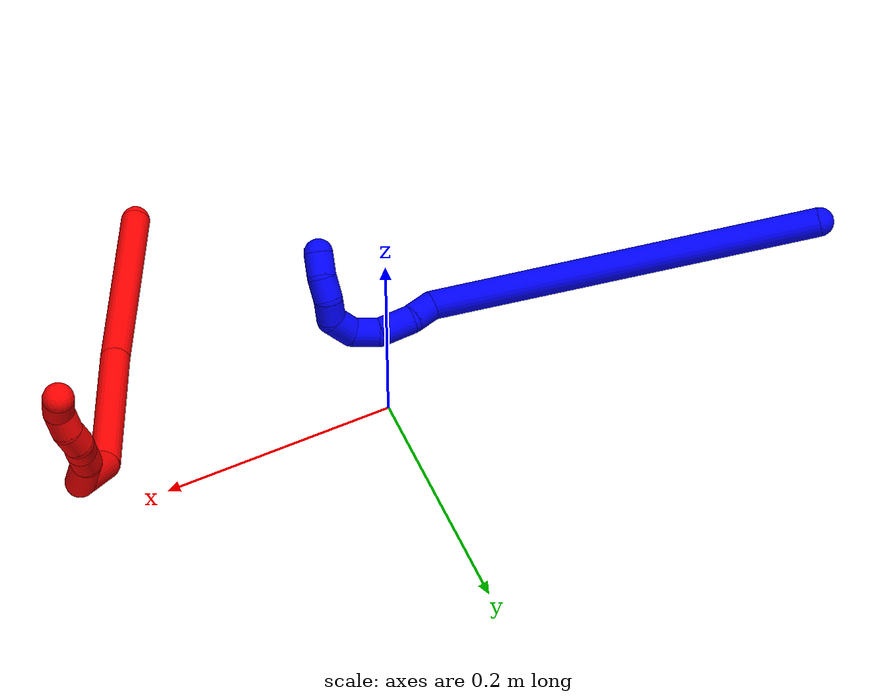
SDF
<sdf version="1.7">
 <world name="default">
  <plugin name="TubeGeneratorPlugin" filename="libtube_generator_plugin.so"/>
  <model name="photoneo_s_sensor">
   <static>1</static>
   <pose>0 0 2 1.57079 1.57079 3.14159</pose>
   <link name="link">
    <inertial><mass>0.1</mass></inertial>
    <sensor name="sensor" type="depth">
     <update_rate>30</update_rate>
     <camera>
      <horizontal_fov>1.22</horizontal_fov>
      <image><width>1920</width><height>1200</height><format>B8G8R8</format></image>
      <clip><near>0.1</near><far>4</far></clip>
      <depth_camera><output>points</output></depth_camera>
     </camera>
     <plugin name="camera_plugin" filename="libgazebo_ros_depth_camera.so">
      <baseline>0.2</baseline>
      <alwaysOn>1</alwaysOn>
      <updateRate>0.0</updateRate>
      <cameraName>camera_ir</cameraName>
      <imageTopicName>/camera/color/image_raw</imageTopicName>
      <cameraInfoTopicName>/camera/color/camera_info</cameraInfoTopicName>
      <depthImageTopicName>/camera/depth/image_raw</depthImageTopicName>
      <depthImageCameraInfoTopicName>/camera/depth/camera_info</depthImageCameraInfoTopicName>
      <pointCloudTopicName>/camera/depth/points</pointCloudTopicName>
      <frameName>fr_optical</frameName>
      <pointCloudCutoff>0.1</pointCloudCutoff>
      <pointCloudCutoffMax>2.0</pointCloudCutoffMax>
      <distortionK1>0</distortionK1>
      <distortionK2>0</distortionK2>
      <distortionK3>0</distortionK3>
      <distortionT1>0</distortionT1>
      <distortionT2>0</distortionT2>
      <CxPrime>0</CxPrime>
      <Cx>0</Cx>
      <Cy>0</Cy>
      <focalLength>0</focalLength>
      <hackBaseline>0</hackBaseline>
     </plugin>
    </sensor>
   </link>
  </model>
  <gravity>0 0 -9.8</gravity>
  <magnetic_field>6e-06 2.3e-05 -4.2e-05</magnetic_field>
  <atmosphere type="adiabatic"/>
  <physics name="default_physics" default="0" type="ode">
   <max_step_size>0.003</max_step_size>
   <real_time_factor>1</real_time_factor>
   <real_time_update_rate>1000</real_time_update_rate>
   <max_contacts>10000</max_contacts>
   <ode>
    <solver>
     <type>quick</type>
     <iters>100</iters>
     <sor>1.3</sor>
     <use_dynamic_moi_rescaling>0</use_dynamic_moi_rescaling>
    </solver>
    <constraints>
     <contact_max_correcting_vel>0</contact_max_correcting_vel>
     <contact_surface_layer>0.001</contact_surface_layer>
     <cfm>0</cfm>
     <erp>0.2</erp>
    </constraints>
   </ode>
  </physics>
  <scene><ambient>0.4 0.4 0.4 1</ambient><background>0.7 0.7 0.7 1</background><shadows>0</shadows></scene>
  <audio><device>default</device></audio>
  <spherical_coordinates>
   <surface_model>EARTH_WGS84</surface_model>
   <latitude_deg>0</latitude_deg>
   <longitude_deg>0</longitude_deg>
   <elevation>0</elevation>
   <heading_deg>0</heading_deg>
  </spherical_coordinates>
  <model name="bin">
   <static>1</static>
   <link name="bottom">
    <collision name="collision-bottom">
     <pose>0 0 -0.01 0 -0 0</pose>
     <geometry><box><size>0.8 0.6 0.02</size></box></geometry>
     <surface>
      <friction><ode><mu>100</mu><mu2>100</mu2></ode></friction>
      <contact><collide_bitmask>65535</collide_bitmask></contact>
     </surface>
    </collision>
   </link>
   <link name="west_wall">
    <collision name="collision-west_wall">
     <pose>-0.41 0 0.1 0 -0 0</pose>
     <geometry><box><size>0.02 0.6 0.2</size></box></geometry>
     <surface>
      <friction><ode><mu>100</mu><mu2>100</mu2></ode></friction>
      <contact><collide_bitmask>65535</collide_bitmask></contact>
     </surface>
    </collision>
   </link>
   <link name="east_wall">
    <collision name="collision-east_wall">
     <pose>0.41 0 0.1 0 -0 0</pose>
     <geometry><box><size>0.02 0.6 0.2</size></box></geometry>
     <surface>
      <friction><ode><mu>100</mu><mu2>100</mu2></ode></friction>
      <contact><collide_bitmask>65535</collide_bitmask></contact>
     </surface>
    </collision>
   </link>
   <link name="south_wall">
    <collision name="collision-south_wall">
     <pose>0 -0.31 0.1 0 -0 0</pose>
     <geometry><box><size>0.8 0.02 0.2</size></box></geometry>
     <surface>
      <friction><ode><mu>100</mu><mu2>100</mu2></ode></friction>
      <contact><collide_bitmask>65535</collide_bitmask></contact>
     </surface>
    </collision>
   </link>
   <link name="north_wall">
    <collision name="collision-north_wall">
     <pose>0 0.31 0.1 0 -0 0</pose>
     <geometry><box><size>0.8 0.02 0.2</size></box></geometry>
     <surface>
      <friction><ode><mu>100</mu><mu2>100</mu2></ode></friction>
      <contact><collide_bitmask>65535</collide_bitmask></contact>
     </surface>
    </collision>
   </link>
  </model>
  <model name="1">
   <static>0</static>
   <link name="1">
    <collision name="collision-cylinder-e_1_1_4">
     <pose>0.10934 -0.042241 -0.1211 2.80598 0.705955 2.27962</pose>
     <geometry><cylinder><radius>0.0125</radius><length>0.337075</length></cylinder></geometry>
     <surface>
      <friction><ode><mu>1.16</mu><mu2>1.16</mu2><slip1>0</slip1><slip2>0</slip2></ode></friction>
      <contact><ode><kp>1e+06</kp><kd>1</kd><max_vel>0</max_vel><min_depth>0.001</min_depth></ode></contact>
     </surface>
    </collision>
    <visual name="visual-cylinder-e_1_1_4">
     <pose>0.10934 -0.042241 -0.1211 2.80598 0.705955 2.27962</pose>
     <geometry><cylinder><radius>0.0125</radius><length>0.337075</length></cylinder></geometry>
     <material><ambient>0 0 1 1</ambient></material>
    </visual>
    <collision name="collision-cylinder-e_2_4_5">
     <pose>0.229026 -0.079923 -0.247228 -2.40511 0.990154 -1.90066</pose>
     <geometry><cylinder><radius>0.0125</radius><length>0.024746</length></cylinder></geometry>
     <surface>
      <friction><ode><mu>1.16</mu><mu2>1.16</mu2><slip1>0</slip1><slip2>0</slip2></ode></friction>
      <contact><ode><kp>1e+06</kp><kd>1</kd><max_vel>0</max_vel><min_depth>0.001</min_depth></ode></contact>
     </surface>
    </collision>
    <visual name="visual-cylinder-e_2_4_5">
     <pose>0.229026 -0.079923 -0.247228 -2.40511 0.990154 -1.90066</pose>
     <geometry><cylinder><radius>0.0125</radius><length>0.024746</length></cylinder></geometry>
     <material><ambient>0 0 1 1</ambient></material>
    </visual>
    <collision name="collision-cylinder-e_3_5_6">
     <pose>0.251151 -0.074454 -0.261286 -3.04116 0.914376 -2.93798</pose>
     <geometry><cylinder><radius>0.0125</radius><length>0.029741</length></cylinder></geometry>
     <surface>
      <friction><ode><mu>1.16</mu><mu2>1.16</mu2><slip1>0</slip1><slip2>0</slip2></ode></friction>
      <contact><ode><kp>1e+06</kp><kd>1</kd><max_vel>0</max_vel><min_depth>0.001</min_depth></ode></contact>
     </surface>
    </collision>
    <visual name="visual-cylinder-e_3_5_6">
     <pose>0.251151 -0.074454 -0.261286 -3.04116 0.914376 -2.93798</pose>
     <geometry><cylinder><radius>0.0125</radius><length>0.029741</length></cylinder></geometry>
     <material><ambient>0 0 1 1</ambient></material>
    </visual>
    <collision name="collision-cylinder-e_4_6_7">
     <pose>0.272161 -0.077791 -0.276342 2.52773 0.896771 1.97646</pose>
     <geometry><cylinder><radius>0.0125</radius><length>0.023626</length></cylinder></geometry>
     <surface>
      <friction><ode><mu>1.16</mu><mu2>1.16</mu2><slip1>0</slip1><slip2>0</slip2></ode></friction>
      <contact><ode><kp>1e+06</kp><kd>1</kd><max_vel>0</max_vel><min_depth>0.001</min_depth></ode></contact>
     </surface>
    </collision>
    <visual name="visual-cylinder-e_4_6_7">
     <pose>0.272161 -0.077791 -0.276342 2.52773 0.896771 1.97646</pose>
     <geometry><cylinder><radius>0.0125</radius><length>0.023626</length></cylinder></geometry>
     <material><ambient>0 0 1 1</ambient></material>
    </visual>
    <collision name="collision-cylinder-e_5_7_8">
     <pose>0.292802 -0.085915 -0.279763 0.978968 1.18219 0.686743</pose>
     <geometry><cylinder><radius>0.0125</radius><length>0.02466</length></cylinder></geometry>
     <surface>
      <friction><ode><mu>1.16</mu><mu2>1.16</mu2><slip1>0</slip1><slip2>0</slip2></ode></friction>
      <contact><ode><kp>1e+06</kp><kd>1</kd><max_vel>0</max_vel><min_depth>0.001</min_depth></ode></contact>
     </surface>
    </collision>
    <visual name="visual-cylinder-e_5_7_8">
     <pose>0.292802 -0.085915 -0.279763 0.978968 1.18219 0.686743</pose>
     <geometry><cylinder><radius>0.0125</radius><length>0.02466</length></cylinder></geometry>
     <material><ambient>0 0 1 1</ambient></material>
    </visual>
    <collision name="collision-cylinder-e_6_8_9">
     <pose>0.309029 -0.094369 -0.269672 0.548838 0.502097 0.144147</pose>
     <geometry><cylinder><radius>0.0125</radius><length>0.020015</length></cylinder></geometry>
     <surface>
      <friction><ode><mu>1.16</mu><mu2>1.16</mu2><slip1>0</slip1><slip2>0</slip2></ode></friction>
      <contact><ode><kp>1e+06</kp><kd>1</kd><max_vel>0</max_vel><min_depth>0.001</min_depth></ode></contact>
     </surface>
    </collision>
    <visual name="visual-cylinder-e_6_8_9">
     <pose>0.309029 -0.094369 -0.269672 0.548838 0.502097 0.144147</pose>
     <geometry><cylinder><radius>0.0125</radius><length>0.020015</length></cylinder></geometry>
     <material><ambient>0 0 1 1</ambient></material>
    </visual>
    <collision name="collision-cylinder-e_7_9_10">
     <pose>0.317686 -0.106425 -0.256708 0.938439 0.392763 0.201045</pose>
     <geometry><cylinder><radius>0.0125</radius><length>0.020073</length></cylinder></geometry>
     <surface>
      <friction><ode><mu>1.16</mu><mu2>1.16</mu2><slip1>0</slip1><slip2>0</slip2></ode></friction>
      <contact><ode><kp>1e+06</kp><kd>1</kd><max_vel>0</max_vel><min_depth>0.001</min_depth></ode></contact>
     </surface>
    </collision>
    <visual name="visual-cylinder-e_7_9_10">
     <pose>0.317686 -0.106425 -0.256708 0.938439 0.392763 0.201045</pose>
     <geometry><cylinder><radius>0.0125</radius><length>0.020073</length></cylinder></geometry>
     <material><ambient>0 0 1 1</ambient></material>
    </visual>
    <collision name="collision-cylinder-e_8_10_2">
     <pose>0.322503 -0.122693 -0.24649 1.07635 0.097364 0.058151</pose>
     <geometry><cylinder><radius>0.0125</radius><length>0.020064</length></cylinder></geometry>
     <surface>
      <friction><ode><mu>1.16</mu><mu2>1.16</mu2><slip1>0</slip1><slip2>0</slip2></ode></friction>
      <contact><ode><kp>1e+06</kp><kd>1</kd><max_vel>0</max_vel><min_depth>0.001</min_depth></ode></contact>
     </surface>
    </collision>
    <visual name="visual-cylinder-e_8_10_2">
     <pose>0.322503 -0.122693 -0.24649 1.07635 0.097364 0.058151</pose>
     <geometry><cylinder><radius>0.0125</radius><length>0.020064</length></cylinder></geometry>
     <material><ambient>0 0 1 1</ambient></material>
    </visual>
    <collision name="collision-sphere-2">
     <pose>0.323478 -0.131482 -0.241751 0 -0 0</pose>
     <geometry><sphere><radius>0.0125</radius></sphere></geometry>
     <surface>
      <friction><ode><mu>1.16</mu><mu2>1.16</mu2><slip1>0</slip1><slip2>0</slip2></ode></friction>
      <contact><ode><kp>1e+06</kp><kd>1</kd><max_vel>0</max_vel><min_depth>0.001</min_depth></ode></contact>
     </surface>
    </collision>
    <visual name="visual-sphere-2">
     <pose>0.323478 -0.131482 -0.241751 0 -0 0</pose>
     <geometry><sphere><radius>0.0125</radius></sphere></geometry>
     <material><ambient>0 0 1 1</ambient></material>
    </visual>
    <collision name="collision-sphere-10">
     <pose>0.321528 -0.113905 -0.251228 0 -0 0</pose>
     <geometry><sphere><radius>0.0125</radius></sphere></geometry>
     <surface>
      <friction><ode><mu>1.16</mu><mu2>1.16</mu2><slip1>0</slip1><slip2>0</slip2></ode></friction>
      <contact><ode><kp>1e+06</kp><kd>1</kd><max_vel>0</max_vel><min_depth>0.001</min_depth></ode></contact>
     </surface>
    </collision>
    <visual name="visual-sphere-10">
     <pose>0.321528 -0.113905 -0.251228 0 -0 0</pose>
     <geometry><sphere><radius>0.0125</radius></sphere></geometry>
     <material><ambient>0 0 1 1</ambient></material>
    </visual>
    <collision name="collision-sphere-9">
     <pose>0.313845 -0.098946 -0.262188 0 -0 0</pose>
     <geometry><sphere><radius>0.0125</radius></sphere></geometry>
     <surface>
      <friction><ode><mu>1.16</mu><mu2>1.16</mu2><slip1>0</slip1><slip2>0</slip2></ode></friction>
      <contact><ode><kp>1e+06</kp><kd>1</kd><max_vel>0</max_vel><min_depth>0.001</min_depth></ode></contact>
     </surface>
    </collision>
    <visual name="visual-sphere-9">
     <pose>0.313845 -0.098946 -0.262188 0 -0 0</pose>
     <geometry><sphere><radius>0.0125</radius></sphere></geometry>
     <material><ambient>0 0 1 1</ambient></material>
    </visual>
    <collision name="collision-sphere-4">
     <pose>0.218681 -0.084482 -0.2422 0 -0 0</pose>
     <geometry><sphere><radius>0.0125</radius></sphere></geometry>
     <surface>
      <friction><ode><mu>1.16</mu><mu2>1.16</mu2><slip1>0</slip1><slip2>0</slip2></ode></friction>
      <contact><ode><kp>1e+06</kp><kd>1</kd><max_vel>0</max_vel><min_depth>0.001</min_depth></ode></contact>
     </surface>
    </collision>
    <visual name="visual-sphere-4">
     <pose>0.218681 -0.084482 -0.2422 0 -0 0</pose>
     <geometry><sphere><radius>0.0125</radius></sphere></geometry>
     <material><ambient>0 0 1 1</ambient></material>
    </visual>
    <collision name="collision-sphere-1">
     <geometry><sphere><radius>0.0125</radius></sphere></geometry>
     <surface>
      <friction><ode><mu>1.16</mu><mu2>1.16</mu2><slip1>0</slip1><slip2>0</slip2></ode></friction>
      <contact><ode><kp>1e+06</kp><kd>1</kd><max_vel>0</max_vel><min_depth>0.001</min_depth></ode></contact>
     </surface>
    </collision>
    <visual name="visual-sphere-1">
     <geometry><sphere><radius>0.0125</radius></sphere></geometry>
     <material><ambient>0 0 1 1</ambient></material>
    </visual>
    <collision name="collision-sphere-8">
     <pose>0.304212 -0.089793 -0.277157 0 -0 0</pose>
     <geometry><sphere><radius>0.0125</radius></sphere></geometry>
     <surface>
      <friction><ode><mu>1.16</mu><mu2>1.16</mu2><slip1>0</slip1><slip2>0</slip2></ode></friction>
      <contact><ode><kp>1e+06</kp><kd>1</kd><max_vel>0</max_vel><min_depth>0.001</min_depth></ode></contact>
     </surface>
    </collision>
    <visual name="visual-sphere-8">
     <pose>0.304212 -0.089793 -0.277157 0 -0 0</pose>
     <geometry><sphere><radius>0.0125</radius></sphere></geometry>
     <material><ambient>0 0 1 1</ambient></material>
    </visual>
    <collision name="collision-sphere-5">
     <pose>0.239371 -0.075364 -0.252257 0 -0 0</pose>
     <geometry><sphere><radius>0.0125</radius></sphere></geometry>
     <surface>
      <friction><ode><mu>1.16</mu><mu2>1.16</mu2><slip1>0</slip1><slip2>0</slip2></ode></friction>
      <contact><ode><kp>1e+06</kp><kd>1</kd><max_vel>0</max_vel><min_depth>0.001</min_depth></ode></contact>
     </surface>
    </collision>
    <visual name="visual-sphere-5">
     <pose>0.239371 -0.075364 -0.252257 0 -0 0</pose>
     <geometry><sphere><radius>0.0125</radius></sphere></geometry>
     <material><ambient>0 0 1 1</ambient></material>
    </visual>
    <collision name="collision-sphere-6">
     <pose>0.262931 -0.073544 -0.270315 0 -0 0</pose>
     <geometry><sphere><radius>0.0125</radius></sphere></geometry>
     <surface>
      <friction><ode><mu>1.16</mu><mu2>1.16</mu2><slip1>0</slip1><slip2>0</slip2></ode></friction>
      <contact><ode><kp>1e+06</kp><kd>1</kd><max_vel>0</max_vel><min_depth>0.001</min_depth></ode></contact>
     </surface>
    </collision>
    <visual name="visual-sphere-6">
     <pose>0.262931 -0.073544 -0.270315 0 -0 0</pose>
     <geometry><sphere><radius>0.0125</radius></sphere></geometry>
     <material><ambient>0 0 1 1</ambient></material>
    </visual>
    <collision name="collision-sphere-7">
     <pose>0.281391 -0.082038 -0.282369 0 -0 0</pose>
     <geometry><sphere><radius>0.0125</radius></sphere></geometry>
     <surface>
      <friction><ode><mu>1.16</mu><mu2>1.16</mu2><slip1>0</slip1><slip2>0</slip2></ode></friction>
      <contact><ode><kp>1e+06</kp><kd>1</kd><max_vel>0</max_vel><min_depth>0.001</min_depth></ode></contact>
     </surface>
    </collision>
    <visual name="visual-sphere-7">
     <pose>0.281391 -0.082038 -0.282369 0 -0 0</pose>
     <geometry><sphere><radius>0.0125</radius></sphere></geometry>
     <material><ambient>0 0 1 1</ambient></material>
    </visual>
    <inertial>
     <pose>0.165353 -0.057748 -0.167265 0 -0 0</pose>
     <mass>0.5</mass>
     <inertia>
      <ixx>0.000292</ixx>
      <ixy>0</ixy>
      <ixz>0</ixz>
      <iyy>0.004343</iyy>
      <iyz>0</iyz>
      <izz>-0.001301</izz>
     </inertia>
    </inertial>
   </link>
   <pose>-0.388457 0.02711 0.078851 -0.055027 -0.617234 -0.009864</pose>
  </model>
  <model name="2">
   <static>0</static>
   <link name="2">
    <collision name="collision-cylinder-e_1_1_4">
     <pose>0.037341 0.004249 0.073807 -0.057505 0.467708 -0.013702</pose>
     <geometry><cylinder><radius>0.0125</radius><length>0.165649</length></cylinder></geometry>
     <surface>
      <friction><ode><mu>1.16</mu><mu2>1.16</mu2><slip1>0</slip1><slip2>0</slip2></ode></friction>
      <contact><ode><kp>1e+06</kp><kd>1</kd><max_vel>0</max_vel><min_depth>0.001</min_depth></ode></contact>
     </surface>
    </collision>
    <visual name="visual-cylinder-e_1_1_4">
     <pose>0.037341 0.004249 0.073807 -0.057505 0.467708 -0.013702</pose>
     <geometry><cylinder><radius>0.0125</radius><length>0.165649</length></cylinder></geometry>
     <material><ambient>1 0 0 1</ambient></material>
    </visual>
    <collision name="collision-cylinder-e_2_4_5">
     <pose>0.101103 0.015386 0.203511 -0.122618 0.438652 -0.027366</pose>
     <geometry><cylinder><radius>0.0125</radius><length>0.124417</length></cylinder></geometry>
     <surface>
      <friction><ode><mu>1.16</mu><mu2>1.16</mu2><slip1>0</slip1><slip2>0</slip2></ode></friction>
      <contact><ode><kp>1e+06</kp><kd>1</kd><max_vel>0</max_vel><min_depth>0.001</min_depth></ode></contact>
     </surface>
    </collision>
    <visual name="visual-cylinder-e_2_4_5">
     <pose>0.101103 0.015386 0.203511 -0.122618 0.438652 -0.027366</pose>
     <geometry><cylinder><radius>0.0125</radius><length>0.124417</length></cylinder></geometry>
     <material><ambient>1 0 0 1</ambient></material>
    </visual>
    <collision name="collision-cylinder-e_3_5_6">
     <pose>0.124714 0.021513 0.283903 0.0311 -0.114155 -0.001777</pose>
     <geometry><cylinder><radius>0.0125</radius><length>0.049336</length></cylinder></geometry>
     <surface>
      <friction><ode><mu>1.16</mu><mu2>1.16</mu2><slip1>0</slip1><slip2>0</slip2></ode></friction>
      <contact><ode><kp>1e+06</kp><kd>1</kd><max_vel>0</max_vel><min_depth>0.001</min_depth></ode></contact>
     </surface>
    </collision>
    <visual name="visual-cylinder-e_3_5_6">
     <pose>0.124714 0.021513 0.283903 0.0311 -0.114155 -0.001777</pose>
     <geometry><cylinder><radius>0.0125</radius><length>0.049336</length></cylinder></geometry>
     <material><ambient>1 0 0 1</ambient></material>
    </visual>
    <collision name="collision-cylinder-e_4_6_7">
     <pose>0.107761 0.036591 0.328474 -0.66803 -0.505188 0.178658</pose>
     <geometry><cylinder><radius>0.0125</radius><length>0.058445</length></cylinder></geometry>
     <surface>
      <friction><ode><mu>1.16</mu><mu2>1.16</mu2><slip1>0</slip1><slip2>0</slip2></ode></friction>
      <contact><ode><kp>1e+06</kp><kd>1</kd><max_vel>0</max_vel><min_depth>0.001</min_depth></ode></contact>
     </surface>
    </collision>
    <visual name="visual-cylinder-e_4_6_7">
     <pose>0.107761 0.036591 0.328474 -0.66803 -0.505188 0.178658</pose>
     <geometry><cylinder><radius>0.0125</radius><length>0.058445</length></cylinder></geometry>
     <material><ambient>1 0 0 1</ambient></material>
    </visual>
    <collision name="collision-cylinder-e_5_7_8">
     <pose>0.086378 0.055304 0.355326 -0.400879 -0.777196 0.165979</pose>
     <geometry><cylinder><radius>0.0125</radius><length>0.020649</length></cylinder></geometry>
     <surface>
      <friction><ode><mu>1.16</mu><mu2>1.16</mu2><slip1>0</slip1><slip2>0</slip2></ode></friction>
      <contact><ode><kp>1e+06</kp><kd>1</kd><max_vel>0</max_vel><min_depth>0.001</min_depth></ode></contact>
     </surface>
    </collision>
    <visual name="visual-cylinder-e_5_7_8">
     <pose>0.086378 0.055304 0.355326 -0.400879 -0.777196 0.165979</pose>
     <geometry><cylinder><radius>0.0125</radius><length>0.020649</length></cylinder></geometry>
     <material><ambient>1 0 0 1</ambient></material>
    </visual>
    <collision name="collision-cylinder-e_6_8_9">
     <pose>0.073317 0.061999 0.369858 -0.457988 -0.592457 0.142038</pose>
     <geometry><cylinder><radius>0.0125</radius><length>0.020848</length></cylinder></geometry>
     <surface>
      <friction><ode><mu>1.16</mu><mu2>1.16</mu2><slip1>0</slip1><slip2>0</slip2></ode></friction>
      <contact><ode><kp>1e+06</kp><kd>1</kd><max_vel>0</max_vel><min_depth>0.001</min_depth></ode></contact>
     </surface>
    </collision>
    <visual name="visual-cylinder-e_6_8_9">
     <pose>0.073317 0.061999 0.369858 -0.457988 -0.592457 0.142038</pose>
     <geometry><cylinder><radius>0.0125</radius><length>0.020848</length></cylinder></geometry>
     <material><ambient>1 0 0 1</ambient></material>
    </visual>
    <collision name="collision-cylinder-e_7_9_10">
     <pose>0.0596 0.066497 0.383784 -0.108835 -0.904624 0.052924</pose>
     <geometry><cylinder><radius>0.0125</radius><length>0.020086</length></cylinder></geometry>
     <surface>
      <friction><ode><mu>1.16</mu><mu2>1.16</mu2><slip1>0</slip1><slip2>0</slip2></ode></friction>
      <contact><ode><kp>1e+06</kp><kd>1</kd><max_vel>0</max_vel><min_depth>0.001</min_depth></ode></contact>
     </surface>
    </collision>
    <visual name="visual-cylinder-e_7_9_10">
     <pose>0.0596 0.066497 0.383784 -0.108835 -0.904624 0.052924</pose>
     <geometry><cylinder><radius>0.0125</radius><length>0.020086</length></cylinder></geometry>
     <material><ambient>1 0 0 1</ambient></material>
    </visual>
    <collision name="collision-cylinder-e_8_10_11">
     <pose>0.042385 0.068432 0.39378 -0.318429 -1.16277 0.210264</pose>
     <geometry><cylinder><radius>0.0125</radius><length>0.020305</length></cylinder></geometry>
     <surface>
      <friction><ode><mu>1.16</mu><mu2>1.16</mu2><slip1>0</slip1><slip2>0</slip2></ode></friction>
      <contact><ode><kp>1e+06</kp><kd>1</kd><max_vel>0</max_vel><min_depth>0.001</min_depth></ode></contact>
     </surface>
    </collision>
    <visual name="visual-cylinder-e_8_10_11">
     <pose>0.042385 0.068432 0.39378 -0.318429 -1.16277 0.210264</pose>
     <geometry><cylinder><radius>0.0125</radius><length>0.020305</length></cylinder></geometry>
     <material><ambient>1 0 0 1</ambient></material>
    </visual>
    <collision name="collision-cylinder-e_9_11_2">
     <pose>0.026219 0.074423 0.403386 -0.685818 -0.74205 0.276021</pose>
     <geometry><cylinder><radius>0.0125</radius><length>0.020264</length></cylinder></geometry>
     <surface>
      <friction><ode><mu>1.16</mu><mu2>1.16</mu2><slip1>0</slip1><slip2>0</slip2></ode></friction>
      <contact><ode><kp>1e+06</kp><kd>1</kd><max_vel>0</max_vel><min_depth>0.001</min_depth></ode></contact>
     </surface>
    </collision>
    <visual name="visual-cylinder-e_9_11_2">
     <pose>0.026219 0.074423 0.403386 -0.685818 -0.74205 0.276021</pose>
     <geometry><cylinder><radius>0.0125</radius><length>0.020264</length></cylinder></geometry>
     <material><ambient>1 0 0 1</ambient></material>
    </visual>
    <collision name="collision-sphere-2">
     <pose>0.019372 0.079153 0.409165 0 -0 0</pose>
     <geometry><sphere><radius>0.0125</radius></sphere></geometry>
     <surface>
      <friction><ode><mu>1.16</mu><mu2>1.16</mu2><slip1>0</slip1><slip2>0</slip2></ode></friction>
      <contact><ode><kp>1e+06</kp><kd>1</kd><max_vel>0</max_vel><min_depth>0.001</min_depth></ode></contact>
     </surface>
    </collision>
    <visual name="visual-sphere-2">
     <pose>0.019372 0.079153 0.409165 0 -0 0</pose>
     <geometry><sphere><radius>0.0125</radius></sphere></geometry>
     <material><ambient>1 0 0 1</ambient></material>
    </visual>
    <collision name="collision-sphere-11">
     <pose>0.033066 0.069693 0.397606 0 -0 0</pose>
     <geometry><sphere><radius>0.0125</radius></sphere></geometry>
     <surface>
      <friction><ode><mu>1.16</mu><mu2>1.16</mu2><slip1>0</slip1><slip2>0</slip2></ode></friction>
      <contact><ode><kp>1e+06</kp><kd>1</kd><max_vel>0</max_vel><min_depth>0.001</min_depth></ode></contact>
     </surface>
    </collision>
    <visual name="visual-sphere-11">
     <pose>0.033066 0.069693 0.397606 0 -0 0</pose>
     <geometry><sphere><radius>0.0125</radius></sphere></geometry>
     <material><ambient>1 0 0 1</ambient></material>
    </visual>
    <collision name="collision-sphere-10">
     <pose>0.051705 0.067171 0.389954 0 -0 0</pose>
     <geometry><sphere><radius>0.0125</radius></sphere></geometry>
     <surface>
      <friction><ode><mu>1.16</mu><mu2>1.16</mu2><slip1>0</slip1><slip2>0</slip2></ode></friction>
      <contact><ode><kp>1e+06</kp><kd>1</kd><max_vel>0</max_vel><min_depth>0.001</min_depth></ode></contact>
     </surface>
    </collision>
    <visual name="visual-sphere-10">
     <pose>0.051705 0.067171 0.389954 0 -0 0</pose>
     <geometry><sphere><radius>0.0125</radius></sphere></geometry>
     <material><ambient>1 0 0 1</ambient></material>
    </visual>
    <collision name="collision-sphere-9">
     <pose>0.067496 0.065823 0.377615 0 -0 0</pose>
     <geometry><sphere><radius>0.0125</radius></sphere></geometry>
     <surface>
      <friction><ode><mu>1.16</mu><mu2>1.16</mu2><slip1>0</slip1><slip2>0</slip2></ode></friction>
      <contact><ode><kp>1e+06</kp><kd>1</kd><max_vel>0</max_vel><min_depth>0.001</min_depth></ode></contact>
     </surface>
    </collision>
    <visual name="visual-sphere-9">
     <pose>0.067496 0.065823 0.377615 0 -0 0</pose>
     <geometry><sphere><radius>0.0125</radius></sphere></geometry>
     <material><ambient>1 0 0 1</ambient></material>
    </visual>
    <collision name="collision-sphere-4">
     <pose>0.074682 0.008498 0.147615 0 -0 0</pose>
     <geometry><sphere><radius>0.0125</radius></sphere></geometry>
     <surface>
      <friction><ode><mu>1.16</mu><mu2>1.16</mu2><slip1>0</slip1><slip2>0</slip2></ode></friction>
      <contact><ode><kp>1e+06</kp><kd>1</kd><max_vel>0</max_vel><min_depth>0.001</min_depth></ode></contact>
     </surface>
    </collision>
    <visual name="visual-sphere-4">
     <pose>0.074682 0.008498 0.147615 0 -0 0</pose>
     <geometry><sphere><radius>0.0125</radius></sphere></geometry>
     <material><ambient>1 0 0 1</ambient></material>
    </visual>
    <collision name="collision-sphere-1">
     <geometry><sphere><radius>0.0125</radius></sphere></geometry>
     <surface>
      <friction><ode><mu>1.16</mu><mu2>1.16</mu2><slip1>0</slip1><slip2>0</slip2></ode></friction>
      <contact><ode><kp>1e+06</kp><kd>1</kd><max_vel>0</max_vel><min_depth>0.001</min_depth></ode></contact>
     </surface>
    </collision>
    <visual name="visual-sphere-1">
     <geometry><sphere><radius>0.0125</radius></sphere></geometry>
     <material><ambient>1 0 0 1</ambient></material>
    </visual>
    <collision name="collision-sphere-8">
     <pose>0.079138 0.058176 0.362102 0 -0 0</pose>
     <geometry><sphere><radius>0.0125</radius></sphere></geometry>
     <surface>
      <friction><ode><mu>1.16</mu><mu2>1.16</mu2><slip1>0</slip1><slip2>0</slip2></ode></friction>
      <contact><ode><kp>1e+06</kp><kd>1</kd><max_vel>0</max_vel><min_depth>0.001</min_depth></ode></contact>
     </surface>
    </collision>
    <visual name="visual-sphere-8">
     <pose>0.079138 0.058176 0.362102 0 -0 0</pose>
     <geometry><sphere><radius>0.0125</radius></sphere></geometry>
     <material><ambient>1 0 0 1</ambient></material>
    </visual>
    <collision name="collision-sphere-5">
     <pose>0.127524 0.022275 0.259407 0 -0 0</pose>
     <geometry><sphere><radius>0.0125</radius></sphere></geometry>
     <surface>
      <friction><ode><mu>1.16</mu><mu2>1.16</mu2><slip1>0</slip1><slip2>0</slip2></ode></friction>
      <contact><ode><kp>1e+06</kp><kd>1</kd><max_vel>0</max_vel><min_depth>0.001</min_depth></ode></contact>
     </surface>
    </collision>
    <visual name="visual-sphere-5">
     <pose>0.127524 0.022275 0.259407 0 -0 0</pose>
     <geometry><sphere><radius>0.0125</radius></sphere></geometry>
     <material><ambient>1 0 0 1</ambient></material>
    </visual>
    <collision name="collision-sphere-6">
     <pose>0.121904 0.020751 0.308399 0 -0 0</pose>
     <geometry><sphere><radius>0.0125</radius></sphere></geometry>
     <surface>
      <friction><ode><mu>1.16</mu><mu2>1.16</mu2><slip1>0</slip1><slip2>0</slip2></ode></friction>
      <contact><ode><kp>1e+06</kp><kd>1</kd><max_vel>0</max_vel><min_depth>0.001</min_depth></ode></contact>
     </surface>
    </collision>
    <visual name="visual-sphere-6">
     <pose>0.121904 0.020751 0.308399 0 -0 0</pose>
     <geometry><sphere><radius>0.0125</radius></sphere></geometry>
     <material><ambient>1 0 0 1</ambient></material>
    </visual>
    <collision name="collision-sphere-7">
     <pose>0.093619 0.052432 0.348549 0 -0 0</pose>
     <geometry><sphere><radius>0.0125</radius></sphere></geometry>
     <surface>
      <friction><ode><mu>1.16</mu><mu2>1.16</mu2><slip1>0</slip1><slip2>0</slip2></ode></friction>
      <contact><ode><kp>1e+06</kp><kd>1</kd><max_vel>0</max_vel><min_depth>0.001</min_depth></ode></contact>
     </surface>
    </collision>
    <visual name="visual-sphere-7">
     <pose>0.093619 0.052432 0.348549 0 -0 0</pose>
     <geometry><sphere><radius>0.0125</radius></sphere></geometry>
     <material><ambient>1 0 0 1</ambient></material>
    </visual>
    <inertial>
     <pose>0.074233 0.024972 0.219355 0 -0 0</pose>
     <mass>0.5</mass>
     <inertia>
      <ixx>0.000523</ixx>
      <ixy>0</ixy>
      <ixz>0</ixz>
      <iyy>0.000585</iyy>
      <iyz>0</iyz>
      <izz>-0.000246</izz>
     </inertia>
    </inertial>
   </link>
   <pose>0.123354 -0.263308 0.0121 0.631711 0.850317 1.61239</pose>
  </model>
 </world>
</sdf>
